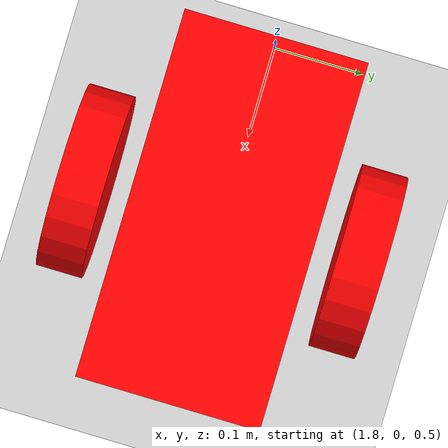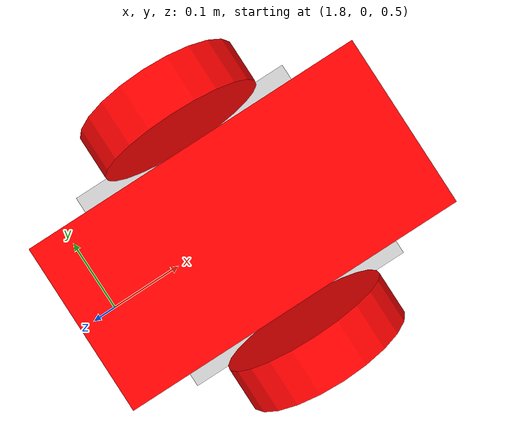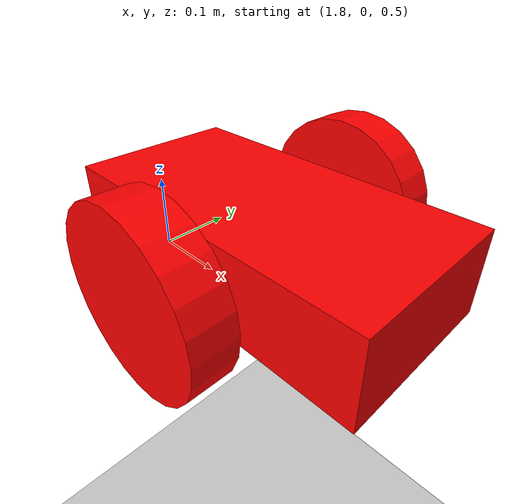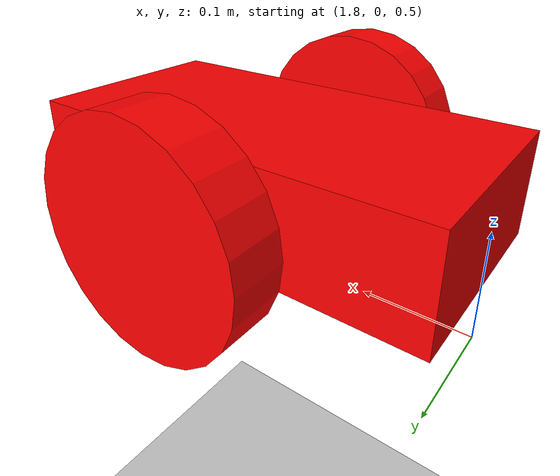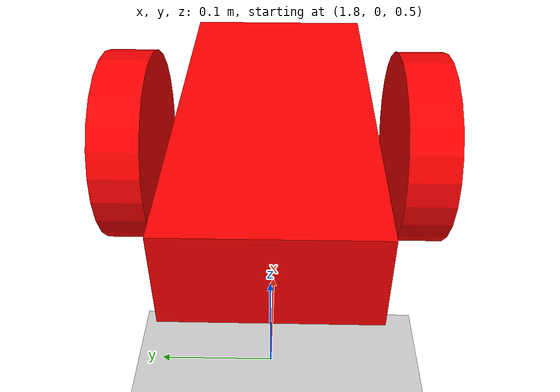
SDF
<sdf version='1.9'>
  <world name='tracer'>
    <physics name="1ms" type="ignored">
      <max_step_size>0.001</max_step_size>
      <real_time_factor>1.0</real_time_factor>
    </physics>

    <plugin filename="gz-sim-physics-system" name="gz::sim::systems::Physics"/>
    <plugin filename="gz-sim-user-commands-system" name="gz::sim::systems::UserCommands"/>
    <plugin filename="gz-sim-scene-broadcaster-system" name="gz::sim::systems::SceneBroadcaster"/>
    <plugin
      filename="ignition-gazebo-sensors-system"
      name="ignition::gazebo::systems::Sensors">
      <render_engine>ogre2</render_engine>
    </plugin>
    <gravity>0 0 -9.8</gravity>

    <light type="directional" name="sun">
      <cast_shadows>true</cast_shadows>
      <pose>0 0 10 0 0 0</pose>
      <diffuse>0.8 0.8 0.8 1</diffuse>
      <specular>0.2 0.2 0.2 1</specular>
      <attenuation>
        <range>1000</range>
        <constant>0.9</constant>
        <linear>0.01</linear>
        <quadratic>0.001</quadratic>
      </attenuation>
      <direction>-0.5 0.1 -0.9</direction>
    </light>

    <model name="ground_plane">
      <static>true</static>
      <link name="link">
        <collision name="collision">
          <geometry>
            <plane>
              <normal>0 0 1</normal>
              <size>100 100</size>
            </plane>
          </geometry>
        </collision>
        <visual name="visual">
          <geometry>
            <plane>
              <normal>0 0 1</normal>
              <size>100 100</size>
            </plane>
          </geometry>
          <material>
            <ambient>0.8 0.8 0.8 1</ambient>
            <diffuse>0.8 0.8 0.8 1</diffuse>
            <specular>0.8 0.8 0.8 1</specular>
          </material>
        </visual>
      </link>
    </model>

    <model name="unpredictable_car">
      <pose>2 0 0.5 0 0 0</pose>
      <self_collide>false</self_collide>
      <static>false</static>

      <link name="chassis">
        <pose>0 0 0.1 0 0 0</pose>
        <inertial>
          <mass>1.0</mass>
          <inertia>
            <ixx>0.001</ixx><iyy>0.001</iyy><izz>0.001</izz>
          </inertia>
        </inertial>
        <visual name="visual">
          <geometry><box><size>0.4 0.2 0.1</size></box></geometry>
          <material>
            <ambient>1 0 0 1</ambient>
            <diffuse>1 0 0 1</diffuse>
            <specular>0.5 0.5 0.5 1</specular>
          </material>
        </visual>
        <collision name="collision">
          <geometry><box><size>0.4 0.2 0.1</size></box></geometry>
        </collision>
      </link>

      <link name="left_wheel">
        <pose>0 0.15 0.1 -1.5707 0 0</pose>
        <inertial>
          <mass>0.1</mass>
          <inertia>
            <ixx>0.0001</ixx><iyy>0.0001</iyy><izz>0.0001</izz>
          </inertia>
        </inertial>
        <visual name="visual">
          <geometry><cylinder><radius>0.1</radius><length>0.05</length></cylinder></geometry>
          <material>
            <ambient>1 0 0 1</ambient>
            <diffuse>1 0 0 1</diffuse>
            <specular>0.5 0.5 0.5 1</specular>
          </material>
        </visual>
        <collision name="collision">
          <geometry><cylinder><radius>0.1</radius><length>0.05</length></cylinder></geometry>

        </collision>
      </link>

      <link name="right_wheel">
        <pose>0 -0.15 0.1 -1.5707 0 0</pose>
        <inertial>
          <mass>0.1</mass>
          <inertia>
            <ixx>0.0001</ixx><iyy>0.0001</iyy><izz>0.0001</izz>
          </inertia>
        </inertial>
        <visual name="visual">
          <geometry><cylinder><radius>0.1</radius><length>0.05</length></cylinder></geometry>
          <material>
            <ambient>1 0 0 1</ambient>
            <diffuse>1 0 0 1</diffuse>
            <specular>0.5 0.5 0.5 1</specular>
          </material>
        </visual>
        <collision name="collision">
          <geometry><cylinder><radius>0.1</radius><length>0.05</length></cylinder></geometry>
        </collision>
      </link>

      <joint name="left_wheel_joint" type="revolute">
        <parent>chassis</parent>
        <child>left_wheel</child>
        <axis><xyz>0 0 1</xyz></axis>
      </joint>

      <joint name="right_wheel_joint" type="revolute">
        <parent>chassis</parent>
        <child>right_wheel</child>
        <axis><xyz>0 0 1</xyz></axis>
      </joint>

      <plugin
        filename="gz-sim-diff-drive-system"
        name="gz::sim::systems::DiffDrive">
        <left_joint>left_wheel_joint</left_joint>
        <right_joint>right_wheel_joint</right_joint>
        <wheel_separation>0.3</wheel_separation>
        <wheel_radius>0.1</wheel_radius>
        <topic>/cmd_vel</topic>
      </plugin>
    </model>

  </world>
</sdf>
